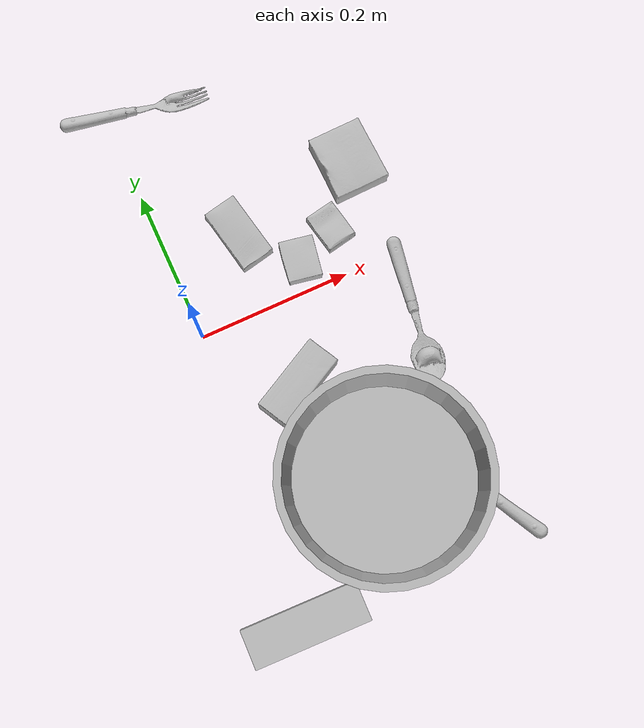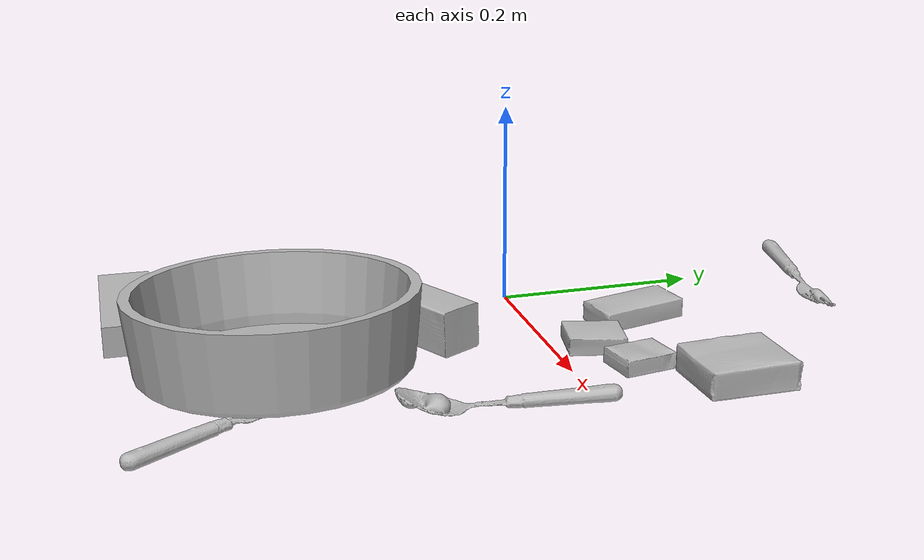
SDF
<sdf version="1.4">
  <world name="default">
    <light name="light1" type="point">
      <pose>0 0 1 0 0 0</pose>
      <diffuse>3 3 3 1</diffuse>
      <specular>3 3 3 1</specular>
    </light>
    <light name="light2" type="point">
      <pose>0 0.5 2 0 0 0</pose>
      <diffuse>1 1 1 1</diffuse>
      <specular>1 1 1 1</specular>
    </light>
    <light name="light3" type="point">
      <pose>0 0.5 2 0 0 0</pose>
      <diffuse>3 3 3 1</diffuse>
      <specular>3 3 3 1</specular>
    </light>
    <scene>
      <ambient>0.7 0.7 0.7</ambient>
    </scene>
    <model name="box11">
      <link name="link_box11">
        <collision name="default">
          <geometry>
            <mesh>
              <uri>model://jenga/collision_meshes/collision.obj</uri>
              <scale>1.0 1.0 1.0</scale>
            </mesh>
          </geometry>
          <surface>
            <friction>
              <ode>
                <mu>0.5</mu>
                <mu2>0.5</mu2>
              </ode>
            </friction>
          <contact>
        <ode>
            <max_vel>0</max_vel>
            <min_depth>0.0001</min_depth>
            <kp>1e8</kp>
        </ode>
    </contact></surface>
        </collision>
        <visual name="default">
          <geometry>
            <mesh>
              <uri>model://jenga/visual_meshes/visual.dae</uri>
              <scale>1.0 1.0 1.0</scale>
            </mesh>
          </geometry>
        </visual>
        <inertial>
          <mass>0.3186844289302826</mass>
          <pose>-2.502855807051674e-07 -0.0001025000965455547 -4.0923401684267446e-05 0.0 -7.34215461761844e-07 0.0</pose>
          <inertia>
            <ixx>8.818771e-05</ixx>
            <iyy>0.0005975576</iyy>
            <izz>0.00063794345</izz>
            <ixy>0</ixy>
            <ixz>0</ixz>
            <iyz>0</iyz>
          </inertia>
        </inertial>
      </link>
      <pose>-0.026892846450209618 -0.37634146213531494 0.01499999687075615 -8.17328300476508e-09 2.203149948102619e-09 3.1180507644427586</pose>
    </model>
    <model name="box12">
      <link name="link_box12">
        <collision name="default">
          <geometry>
            <mesh>
              <uri>model://pudding_box/collision_meshes/collision.obj</uri>
              <scale>0.5 0.5 0.5</scale>
            </mesh>
          </geometry>
          <surface>
            <friction>
              <ode>
                <mu>0.5</mu>
                <mu2>0.5</mu2>
              </ode>
            </friction>
          <contact>
        <ode>
            <max_vel>0</max_vel>
            <min_depth>0.0001</min_depth>
            <kp>1e8</kp>
        </ode>
    </contact></surface>
        </collision>
        <visual name="default">
          <geometry>
            <mesh>
              <uri>model://pudding_box/visual_meshes/visual.dae</uri>
              <scale>0.5 0.5 0.5</scale>
            </mesh>
          </geometry>
        </visual>
        <inertial>
          <mass>0.030172348022460938</mass>
          <pose>0.00024474109522998333 0.000403394311433658 -0.00025944141088984907 0.005213102256408686 -0.006603800110353006 0.02007982142872578</pose>
          <inertia>
            <ixx>8.527073e-06</ixx>
            <iyy>5.7370744e-06</iyy>
            <izz>1.259245e-05</izz>
            <ixy>0</ixy>
            <ixz>0</ixz>
            <iyz>0</iyz>
          </inertia>
        </inertial>
      </link>
      <pose>0.1528450846672058 0.038945574313402176 0.00986290443688631 0.02234850347171624 -0.011391664046230808 2.9715001958666774</pose>
    </model>
    <model name="box13">
      <link name="link_box13">
        <collision name="default">
          <geometry>
            <mesh>
              <uri>model://sugar_box/collision_meshes/collision.obj</uri>
              <scale>0.5 0.5 0.5</scale>
            </mesh>
          </geometry>
          <surface>
            <friction>
              <ode>
                <mu>0.5</mu>
                <mu2>0.5</mu2>
              </ode>
            </friction>
          <contact>
        <ode>
            <max_vel>0</max_vel>
            <min_depth>0.0001</min_depth>
            <kp>1e8</kp>
        </ode>
    </contact></surface>
        </collision>
        <visual name="default">
          <geometry>
            <mesh>
              <uri>model://sugar_box/visual_meshes/visual.dae</uri>
              <scale>0.5 0.5 0.5</scale>
            </mesh>
          </geometry>
        </visual>
        <inertial>
          <mass>0.12330043315887451</mass>
          <pose>0.0005171863595023751 1.924554817378521e-05 -0.0001818240125430748 -0.0004046263878582698 0.0010506634058618082 0.0026153787888998363</pose>
          <inertia>
            <ixx>2.5683388e-05</ixx>
            <iyy>8.301401e-05</iyy>
            <izz>9.937768e-05</izz>
            <ixy>0</ixy>
            <ixz>0</ixz>
            <iyz>0</iyz>
          </inertia>
        </inertial>
      </link>
      <pose>0.09496693313121796 0.10181280970573425 0.011399313807487488 0.0007753234655267488 -0.023432358049747568 1.7704599626804542</pose>
    </model>
    <model name="box21">
      <link name="link_box21">
        <collision name="default">
          <geometry>
            <mesh>
              <uri>model://wood_block/collision_meshes/collision.obj</uri>
              <scale>0.5 0.5 0.5</scale>
            </mesh>
          </geometry>
          <surface>
            <friction>
              <ode>
                <mu>0.5</mu>
                <mu2>0.5</mu2>
              </ode>
            </friction>
          <contact>
        <ode>
            <max_vel>0</max_vel>
            <min_depth>0.0001</min_depth>
            <kp>1e8</kp>
        </ode>
    </contact></surface>
        </collision>
        <visual name="default">
          <geometry>
            <mesh>
              <uri>model://wood_block/visual_meshes/visual.dae</uri>
              <scale>0.5 0.5 0.5</scale>
            </mesh>
          </geometry>
        </visual>
        <inertial>
          <mass>0.22575385868549347</mass>
          <pose>-2.9066577553749084e-06 -0.00028540470520965755 0.00013204291462898254 -0.05220771918194674 -0.005192696213783058 -0.006861377697513623</pose>
          <inertia>
            <ixx>7.552322e-05</ixx>
            <iyy>0.00023857782</iyy>
            <izz>0.00023768542</izz>
            <ixy>0</ixy>
            <ixz>0</ixz>
            <iyz>0</iyz>
          </inertia>
        </inertial>
      </link>
      <pose>0.0838223248720169 -0.10746913403272629 0.022629262879490852 -0.005208486614872114 0.005718723703865617 -2.65135185068051</pose>
    </model>
    <model name="box22">
      <link name="link_box22">
        <collision name="default">
          <geometry>
            <mesh>
              <uri>model://cracker_box/collision_meshes/collision.obj</uri>
              <scale>0.25 0.25 0.25</scale>
            </mesh>
          </geometry>
          <surface>
            <friction>
              <ode>
                <mu>0.5</mu>
                <mu2>0.5</mu2>
              </ode>
            </friction>
          <contact>
        <ode>
            <max_vel>0</max_vel>
            <min_depth>0.0001</min_depth>
            <kp>1e8</kp>
        </ode>
    </contact></surface>
        </collision>
        <visual name="default">
          <geometry>
            <mesh>
              <uri>model://cracker_box/visual_meshes/visual.dae</uri>
              <scale>0.25 0.25 0.25</scale>
            </mesh>
          </geometry>
        </visual>
        <inertial>
          <mass>0.02141544781625271</mass>
          <pose>0.0002366038243053481 6.358561950037256e-05 -0.00042573839891701937 -0.000316207804917531 -0.011106489600095467 0.0025467954686493135</pose>
          <inertia>
            <ixx>3.4044588e-06</ixx>
            <iyy>5.62143e-06</iyy>
            <izz>8.022297e-06</izz>
            <ixy>0</ixy>
            <ixz>0</ixz>
            <iyz>0</iyz>
          </inertia>
        </inertial>
      </link>
      <pose>0.20613092184066772 0.06273923814296722 0.009120451286435127 -0.011788094108338188 -0.007367149677279785 -1.379360508631362</pose>
    </model>
    <model name="box23">
      <link name="link_box23">
        <collision name="default">
          <geometry>
            <mesh>
              <uri>model://gelatin_box/collision_meshes/collision.obj</uri>
              <scale>1.0 1.0 1.0</scale>
            </mesh>
          </geometry>
          <surface>
            <friction>
              <ode>
                <mu>0.5</mu>
                <mu2>0.5</mu2>
              </ode>
            </friction>
          <contact>
        <ode>
            <max_vel>0</max_vel>
            <min_depth>0.0001</min_depth>
            <kp>1e8</kp>
        </ode>
    </contact></surface>
        </collision>
        <visual name="default">
          <geometry>
            <mesh>
              <uri>model://gelatin_box/visual_meshes/visual.dae</uri>
              <scale>1.0 1.0 1.0</scale>
            </mesh>
          </geometry>
        </visual>
        <inertial>
          <mass>0.2518538236618042</mass>
          <pose>0.00043196187471039593 0.00011156871914863586 -0.0003640321083366871 -0.001050372077086074 -0.00475581729336075 0.01644055760821351</pose>
          <inertia>
            <ixx>0.00017778824</ixx>
            <iyy>0.00012699323</iyy>
            <izz>0.00027063338</izz>
            <ixy>0</ixy>
            <ixz>0</ixz>
            <iyz>0</iyz>
          </inertia>
        </inertial>
      </link>
      <pose>0.2621728777885437 0.13293668627738953 0.015168309211730957 0.005597440141639187 -0.00730452611082584 -3.1164461211009336</pose>
    </model>
    <model name="plate1">
      <link name="link_plate1">
        <collision name="default">
          <geometry>
            <mesh>
              <uri>model://pan_tefal/collision_meshes/collision.obj</uri>
              <scale>1.0 1.0 1.0</scale>
            </mesh>
          </geometry>
          <surface>
            <friction>
              <ode>
                <mu>0.5</mu>
                <mu2>0.5</mu2>
              </ode>
            </friction>
          <contact>
        <ode>
            <max_vel>0</max_vel>
            <min_depth>0.0001</min_depth>
            <kp>1e8</kp>
        </ode>
    </contact></surface>
        </collision>
        <visual name="default">
          <geometry>
            <mesh>
              <uri>model://pan_tefal/visual_meshes/visual.dae</uri>
              <scale>1.0 1.0 1.0</scale>
            </mesh>
          </geometry>
        </visual>
        <inertial>
          <mass>1.2783581018447876</mass>
          <pose>-0.0001800234749680385 3.279297015978955e-05 -0.008514934219419956 0.0008190282028794127 -0.0003301398069692291 -0.33185125702417473</pose>
          <inertia>
            <ixx>0.0088244425</ixx>
            <iyy>0.008881334</iyy>
            <izz>0.016244099</izz>
            <ixy>0</ixy>
            <ixz>0</ixz>
            <iyz>0</iyz>
          </inertia>
        </inertial>
      </link>
      <pose>0.13060902059078217 -0.25681546330451965 0.04487522691488266 -0.04484363036637472 0.04525565117973297 2.3745620529681624</pose>
    </model>
    <model name="silverware1">
      <link name="link_silverware1">
        <collision name="default">
          <geometry>
            <mesh>
              <uri>model://knife/collision_meshes/collision.obj</uri>
              <scale>1.0 1.0 1.0</scale>
            </mesh>
          </geometry>
          <surface>
            <friction>
              <ode>
                <mu>0.5</mu>
                <mu2>0.5</mu2>
              </ode>
            </friction>
          <contact>
        <ode>
            <max_vel>0</max_vel>
            <min_depth>0.0001</min_depth>
            <kp>1e8</kp>
        </ode>
    </contact></surface>
        </collision>
        <visual name="default">
          <geometry>
            <mesh>
              <uri>model://knife/visual_meshes/visual.dae</uri>
              <scale>1.0 1.0 1.0</scale>
            </mesh>
          </geometry>
        </visual>
        <inertial>
          <mass>0.028752580285072327</mass>
          <pose>-0.023785240948200226 0.0015275123296305537 5.0620223191799596e-05 0.07306965696526056 0.017248417457013686 -0.00740982691157592</pose>
          <inertia>
            <ixx>8.161146e-07</ixx>
            <iyy>0.000110462766</iyy>
            <izz>0.00011072555</izz>
            <ixy>0</ixy>
            <ixz>0</ixz>
            <iyz>0</iyz>
          </inertia>
        </inertial>
      </link>
      <pose>0.23614829778671265 -0.30483531951904297 0.008049506694078445 -0.1478627706178414 -0.01266509188151871 2.0538958526605353</pose>
    </model>
    <model name="silverware2">
      <link name="link_silverware2">
        <collision name="default">
          <geometry>
            <mesh>
              <uri>model://spoon/collision_meshes/collision.obj</uri>
              <scale>1.0 1.0 1.0</scale>
            </mesh>
          </geometry>
          <surface>
            <friction>
              <ode>
                <mu>0.5</mu>
                <mu2>0.5</mu2>
              </ode>
            </friction>
          <contact>
        <ode>
            <max_vel>0</max_vel>
            <min_depth>0.0001</min_depth>
            <kp>1e8</kp>
        </ode>
    </contact></surface>
        </collision>
        <visual name="default">
          <geometry>
            <mesh>
              <uri>model://spoon/visual_meshes/visual.dae</uri>
              <scale>1.0 1.0 1.0</scale>
            </mesh>
          </geometry>
        </visual>
        <inertial>
          <mass>0.03275385871529579</mass>
          <pose>-0.005526320543140173 -0.0016034176805987954 -0.0007271653157658875 0.03521620701241808 -0.03906583474323888 0.006150609342160928</pose>
          <inertia>
            <ixx>1.8218228e-06</ixx>
            <iyy>0.00012462735</iyy>
            <izz>0.0001255258</izz>
            <ixy>0</ixy>
            <ixz>0</ixz>
            <iyz>0</iyz>
          </inertia>
        </inertial>
      </link>
      <pose>0.2590520679950714 -0.07907818257808685 0.008385266177356243 0.006731778545431124 0.026892982764691594 -1.7229942360941632</pose>
    </model>
    <model name="silverware3">
      <link name="link_silverware3">
        <collision name="default">
          <geometry>
            <mesh>
              <uri>model://fork/collision_meshes/collision.obj</uri>
              <scale>1.0 1.0 1.0</scale>
            </mesh>
          </geometry>
          <surface>
            <friction>
              <ode>
                <mu>0.5</mu>
                <mu2>0.5</mu2>
              </ode>
            </friction>
          <contact>
        <ode>
            <max_vel>0</max_vel>
            <min_depth>0.0001</min_depth>
            <kp>1e8</kp>
        </ode>
    </contact></surface>
        </collision>
        <visual name="default">
          <geometry>
            <mesh>
              <uri>model://fork/visual_meshes/visual.dae</uri>
              <scale>1.0 1.0 1.0</scale>
            </mesh>
          </geometry>
        </visual>
        <inertial>
          <mass>0.015051598660647869</mass>
          <pose>-0.029570037499070168 0.00046588244731538 0.0003218861238565296 -0.013550825752082697 -0.010977832944741694 0.014453903400543814</pose>
          <inertia>
            <ixx>5.2764364e-07</ixx>
            <iyy>3.9295395e-05</iyy>
            <izz>3.953141e-05</izz>
            <ixy>0</ixy>
            <ixz>0</ixz>
            <iyz>0</iyz>
          </inertia>
        </inertial>
      </link>
      <pose>0.037534404546022415 0.3111528158187866 0.005754056386649609 -0.18967046246367883 0.024060360786649925 -0.19752716994449065</pose>
    </model>
  <physics type="ode">
      <max_contacts>50</max_contacts>
      <ode>
        <solver>
          <type>quick</type>
          <iters>75</iters>
        </solver>
        <constraints>
          <contact_max_correcting_vel>0</contact_max_correcting_vel>
          <contact_surface_layer>0</contact_surface_layer>
        </constraints>
      </ode>
    </physics></world>
</sdf>
